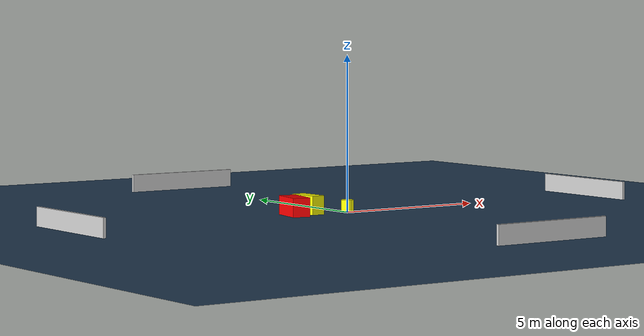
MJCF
<?xml version="1.0" ?>
<mujoco model="generated_environment">
  <option timestep="0.01" integrator="RK4" cone="elliptic"/>
  <default>
    <geom density="1"/>
  </default>
  <asset>
    <texture builtin="gradient" height="3072" name="skybox" rgb1="0.3 0.5 0.7" rgb2="0 0 0" type="skybox" width="512"/>
    <texture builtin="checker" height="300" name="groundplane" rgb1="0.2 0.3 0.4" rgb2="0.1 0.2 0.3" type="2d" width="300"/>
    <material name="groundplane" reflectance="0.2" texrepeat="5 5" texture="groundplane"/>
  </asset>
  <worldbody>
    <light dir="0 0 -1" directional="true" pos="0 0 1.5"/>
    <geom condim="3" friction="0.5 0.005 0.001" material="groundplane" name="floor" pos="0 0 0" size="0 0 0.05" type="plane"/>
    <body name="walls">
      <geom name="wall_1" condim="4" pos="-10.0 0.0 0.3" rgba="0.800000011920929 0.800000011920929 0.800000011920929 1.0" size="0.05 2.0 0.3" type="box"/>
      <geom name="wall_2" condim="4" pos="10.0 0.0 0.3" rgba="0.800000011920929 0.800000011920929 0.800000011920929 1.0" size="0.05 2.0 0.3" type="box"/>
      <geom name="wall_3" condim="4" pos="0.0 -10.0 0.3" rgba="0.800000011920929 0.800000011920929 0.800000011920929 1.0" size="2.0 0.05 0.3" type="box"/>
      <geom name="wall_4" condim="4" pos="0.0 10.0 0.3" rgba="0.800000011920929 0.800000011920929 0.800000011920929 1.0" size="2.0 0.05 0.3" type="box"/>
    </body>
    <body name="robot">
      <joint name="joint_x" type="slide" pos="0 0 0" axis="1 0 0"/>
      <joint name="joint_y" type="slide" pos="0 0 0" axis="0 1 0"/>
      <geom name="robot" type="cylinder" pos="0.0 0.0 0.2" size="0.2 0.2 0.0" mass="5.0" friction="1.0 0.005 0.0001" condim="4" rgba="1.0 1.0 0.0 1.0"/>
    </body>
    <body name="obstacle_1_movable">
      <geom name="obstacle_1_movable" condim="4" pos="-1.2526494568052138 0.3734558489216889 0.3" euler="0 0 4.31859561772745" friction="0.0 0.005 0.001" rgba="1.0 1.0 0.0 1.0" size="0.2350305614084179 0.519271165839178 0.3" type="box" mass="0.1"/>
      <joint type="free"/>
    </body>
    <body name="obstacle_2_static">
      <geom name="obstacle_2_static" condim="4" pos="-1.9564146558950042 0.113990596222006 0.3" euler="0 0 259.0508980076832" friction="0.0 0.005 0.001" rgba="1.0 0.0 0.0 1.0" size="0.5733024407448035 0.2835791268509709 0.3" type="box"/>
    </body>
  </worldbody>
  <actuator>
    <motor name="actuator_x" joint="joint_x" gear="1" ctrlrange="-1 1"/>
    <motor name="actuator_y" joint="joint_y" gear="1" ctrlrange="-1 1"/>
  </actuator>
</mujoco>
